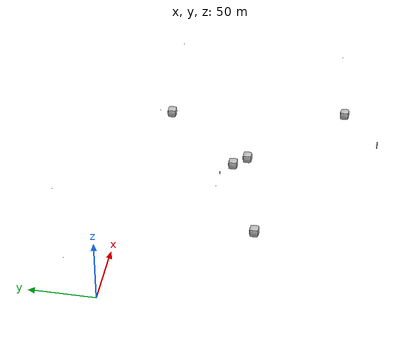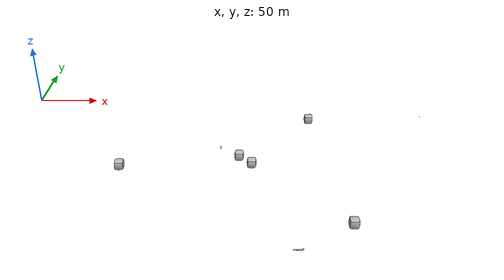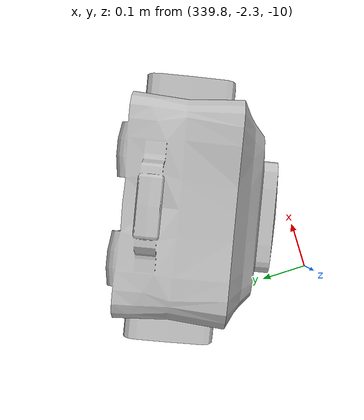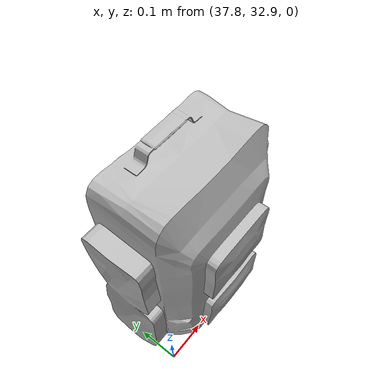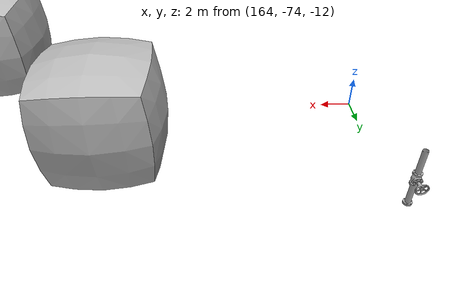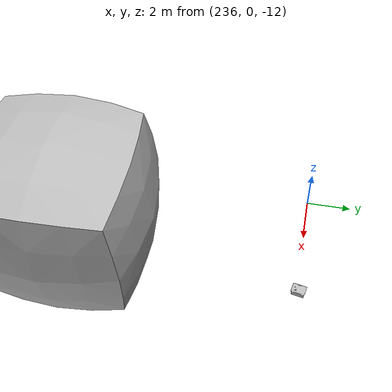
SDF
<sdf version="1.6">
 <world name="tunnel_practice_2">
  <scene>
   <ambient>0.2 0.2 0.2 1.0</ambient>
   <background>0.34 0.39 0.43 1.0</background>
   <grid>false</grid>
   <origin_visual>false</origin_visual>
  </scene>
  <light name="user_spot_light_0" type="spot">
   <pose>12 0 15 0 0.65 0</pose>
   <diffuse>1 1 1 1</diffuse>
   <specular>0.1 0.1 0.1 1</specular>
   <direction>0 0 -1</direction>
   <attenuation>
    <range>30</range>
    <constant>0.001</constant>
    <linear>0.01</linear>
    <quadratic>0.000</quadratic>
   </attenuation>
   <spot><inner_angle>0.0</inner_angle><outer_angle>1.5</outer_angle><falloff>0.01</falloff></spot>
  </light>
  <include><name>artifact_origin</name><pose>2 4 0.5 0 0 0</pose><uri>model://fiducial</uri></include>
  <include><name>backpack_1</name><pose>38 33 0 0 0 0</pose><uri>model://Backpack</uri></include>
  <include><name>toolbox_1</name><pose>121 62.2 -5 0 0 0.1</pose><uri>model://Toolbox</uri></include>
  <include><name>extinguisher_1</name><pose>145 -62 -5 0 0 0.2</pose><uri>model://Extinguisher</uri></include>
  <include><name>valve_1</name><pose>165 -62 -9 0 0 3.14159</pose><uri>model://Valve</uri></include>
  <include><name>radio_1</name><pose>200 -117.9 -10 0 0 0.6</pose><uri>model://Radio</uri></include>
  <include><name>duct_1</name><pose>220 -180 -7.1 0 -1.5708 -1.5708</pose><uri>model://Duct</uri></include>
  <include>
   <name>electrical_box_1</name>
   <pose>242 0 -10 0 0 -0.2</pose>
   <uri>model://Electrical Box</uri>
  </include>
  <include><name>phone_1</name><pose>262 -145 -9.997 1.57 0 -0.3</pose><uri>model://Phone</uri></include>
  <include><name>backpack_2</name><pose>340 -2.1 -10 0 0 -0.4</pose><uri>model://Backpack</uri></include>
  <include><name>radio_2</name><pose>342 -140 -10 0 0 -0.6</pose><uri>model://Radio</uri></include>
  <include><uri>model://tunnel_tile_blocker</uri><name>blocker_90_1</name><pose>90 -100 0 0 0 0</pose></include>
  <include>
   <uri>model://tunnel_tile_blocker</uri>
   <name>blocker_180_1</name>
   <pose>180 -70 -10 0 0 0</pose>
  </include>
  <include>
   <uri>model://tunnel_tile_blocker</uri>
   <name>blocker_190_1</name>
   <pose>190 -80 -10 0 0 0</pose>
  </include>
  <include>
   <uri>model://tunnel_tile_blocker</uri>
   <name>blocker_240_1</name>
   <pose>240 -10 -10 0 0 0</pose>
  </include>
  <include>
   <uri>model://tunnel_tile_blocker</uri>
   <name>blocker_260_1</name>
   <pose>260 -150 -10 0 0 0</pose>
  </include>
  <plugin name="game_logic_plugin" filename="libGameLogicPlugin.so">
   <artifact><name>backpack_1</name><type>TYPE_BACKPACK</type></artifact>
   <artifact><name>toolbox_1</name><type>TYPE_TOOLBOX</type></artifact>
   <artifact><name>extinguisher_1</name><type>TYPE_EXTINGUISHER</type></artifact>
   <artifact><name>valve_1</name><type>TYPE_VALVE</type></artifact>
   <artifact><name>radio_1</name><type>TYPE_RADIO</type></artifact>
   <artifact><name>duct_1</name><type>TYPE_DUCT</type></artifact>
   <artifact><name>electrical_box_1</name><type>TYPE_ELECTRICAL_BOX</type></artifact>
   <artifact><name>phone_1</name><type>TYPE_PHONE</type></artifact>
   <artifact><name>backpack_2</name><type>TYPE_BACKPACK</type></artifact>
   <artifact><name>radio_2</name><type>TYPE_RADIO</type></artifact>
  </plugin>
  <plugin name="comms_broker_plugin" filename="libCommsBrokerPlugin.so">
   <comms_model>
    <comms_model_type>visibility_range</comms_model_type>
    <range_config>
     <max_range>500.0</max_range>
     <fading_exponent>2.5</fading_exponent>
     <L0>40</L0>
     <sigma>10.0</sigma>
    </range_config>
    <visibility_config>
     <visibility_cost_to_fading_exponent>0.2</visibility_cost_to_fading_exponent>
     <comms_cost_max>15</comms_cost_max>
    </visibility_config>
    <radio_config>
     <capacity>1000000</capacity>
     <tx_power>20</tx_power>
     <noise_floor>-90</noise_floor>
     <modulation>QPSK</modulation>
    </radio_config>
   </comms_model>
  </plugin>
  <plugin name="ros_interface_plugin" filename="librotors_gazebo_ros_interface_plugin.so"/>
 </world>
</sdf>

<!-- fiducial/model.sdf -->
<sdf version='1.6'>
  <model name='fiducial'>
    <static>true</static>
    <link name='link'>
    </link>
  </model>
</sdf>

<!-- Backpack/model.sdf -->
<sdf version='1.6'>
  <model name='Backpack'>
    <static>true</static>
    <link name='link'>
      <collision name='collision'>
        <geometry>
          <mesh>
            <uri>model://Backpack/meshes/Backpack.dae</uri>
          </mesh>
        </geometry>
      </collision>
      <visual name='visual'>
        <geometry>
          <mesh>
            <uri>model://Backpack/meshes/Backpack.dae</uri>
          </mesh>
        </geometry>
      </visual>
    </link>
  </model>
</sdf>

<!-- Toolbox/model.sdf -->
<sdf version='1.6'>
  <model name='Toolbox'>
    <static>true</static>
    <link name='link'>
      <collision name='collision'>
        <geometry>
          <mesh>
            <uri>model://Toolbox/meshes/Toolbox.dae</uri>
          </mesh>
        </geometry>
      </collision>
      <visual name='visual'>
        <geometry>
          <mesh>
            <uri>model://Toolbox/meshes/Toolbox.dae</uri>
          </mesh>
        </geometry>
      </visual>
    </link>
  </model>
</sdf>

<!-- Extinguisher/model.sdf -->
<sdf version='1.6'>
  <model name='Extinguisher'>
    <static>true</static>
    <link name='link'>
      <collision name='collision'>
        <geometry>
          <mesh>
            <uri>model://Extinguisher/meshes/Extinguisher.dae</uri>
          </mesh>
        </geometry>
      </collision>
      <visual name='visual'>
        <geometry>
          <mesh>
            <uri>model://Extinguisher/meshes/Extinguisher.dae</uri>
          </mesh>
        </geometry>
      </visual>
    </link>
  </model>
</sdf>

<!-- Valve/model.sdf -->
<sdf version='1.6'>
  <model name='Valve'>
    <static>true</static>
    <link name='link'>
      <collision name='collision'>
        <geometry>
          <mesh>
            <uri>model://Valve/meshes/Valve.dae</uri>
          </mesh>
        </geometry>
      </collision>
      <visual name='visual'>
        <geometry>
          <mesh>
            <uri>model://Valve/meshes/Valve.dae</uri>
          </mesh>
        </geometry>
      </visual>
    </link>
  </model>
</sdf>

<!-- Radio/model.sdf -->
<sdf version='1.6'>
  <model name='Radio'>
    <static>true</static>
    <link name='link'>
      <collision name='collision'>
        <geometry>
          <mesh>
            <uri>model://Radio/meshes/Radio.dae</uri>
          </mesh>
        </geometry>
      </collision>
      <visual name='visual'>
        <geometry>
          <mesh>
            <uri>model://Radio/meshes/Radio.dae</uri>
          </mesh>
        </geometry>
        <plugin name='light_source_visualize' filename='libLightVisualPlugin.so'>
          <light>
            <id>light_source</id>
            <visualize>false</visualize>
          </light>
        </plugin>
      </visual>
      <light name='light_source' type='point'>
        <pose>0.0137 -0.02 0.109 0 0 0</pose>
        <attenuation>
          <range>2.0</range>
          <constant>0.2</constant>
          <linear>0.10</linear>
          <quadratic>0.1</quadratic>
        </attenuation>
        <diffuse>1 0 0 1</diffuse>
        <specular>1 0 0 1</specular>
      </light>
    </link>

    <plugin name='light_control' filename='libFlashLightPlugin.so'>
      <light>
        <id>link/light_source</id>
        <duration>1.0</duration>
        <interval>3.0</interval>
        <color>1 0 0</color>
      </light>
    </plugin>

  </model>
</sdf>

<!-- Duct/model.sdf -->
<sdf version='1.6'>
  <model name='Duct'>
    <static>true</static>
    <link name='link'>
      <collision name='collision'>
        <geometry>
          <mesh>
            <uri>model://Duct/meshes/Duct.dae</uri>
          </mesh>
        </geometry>
      </collision>
      <visual name='visual'>
        <geometry>
          <mesh>
            <uri>model://Duct/meshes/Duct.dae</uri>
          </mesh>
        </geometry>
      </visual>
    </link>
  </model>
</sdf>

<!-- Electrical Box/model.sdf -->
<sdf version='1.6'>
  <model name='Electrical Box'>
    <static>true</static>
    <link name='link'>
      <pose>0 0 0 1.57 3.14159 0</pose>
      <collision name='collision'>
        <geometry>
          <mesh>
            <uri>model://Electrical Box/meshes/Electrical Box.dae</uri>
          </mesh>
        </geometry>
      </collision>
      <visual name='visual'>
        <geometry>
          <mesh>
            <uri>model://Electrical Box/meshes/Electrical Box.dae</uri>
          </mesh>
        </geometry>
      </visual>
    </link>
  </model>
</sdf>

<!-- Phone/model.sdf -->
<sdf version='1.6'>
  <model name='Phone'>
    <static>true</static>
    <link name='link'>
      <collision name='collision'>
        <geometry>
          <mesh>
            <uri>model://Phone/meshes/Phone.dae</uri>
          </mesh>
        </geometry>
      </collision>
      <visual name='visual'>
        <geometry>
          <mesh>
            <uri>model://Phone/meshes/Phone.dae</uri>
          </mesh>
        </geometry>
      </visual>
    </link>
  </model>
</sdf>

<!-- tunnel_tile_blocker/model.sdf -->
<sdf version="1.6">
  <model name="tunnel_tile_blocker">
    <static>true</static>
    <link name="link">
      <pose>0 0 0 0 0 0</pose>
      <collision name="collision">
        <geometry>
          <mesh>
            <uri>model://tunnel_tile_blocker/meshes/tunnel_tile_blocker.dae</uri>
          </mesh>
        </geometry>
      </collision>
      <visual name="visual">
        <geometry>
          <mesh>
            <uri>model://tunnel_tile_blocker/meshes/tunnel_tile_blocker.dae</uri>
          </mesh>
        </geometry>
      </visual>
    </link>
  </model>
</sdf>
